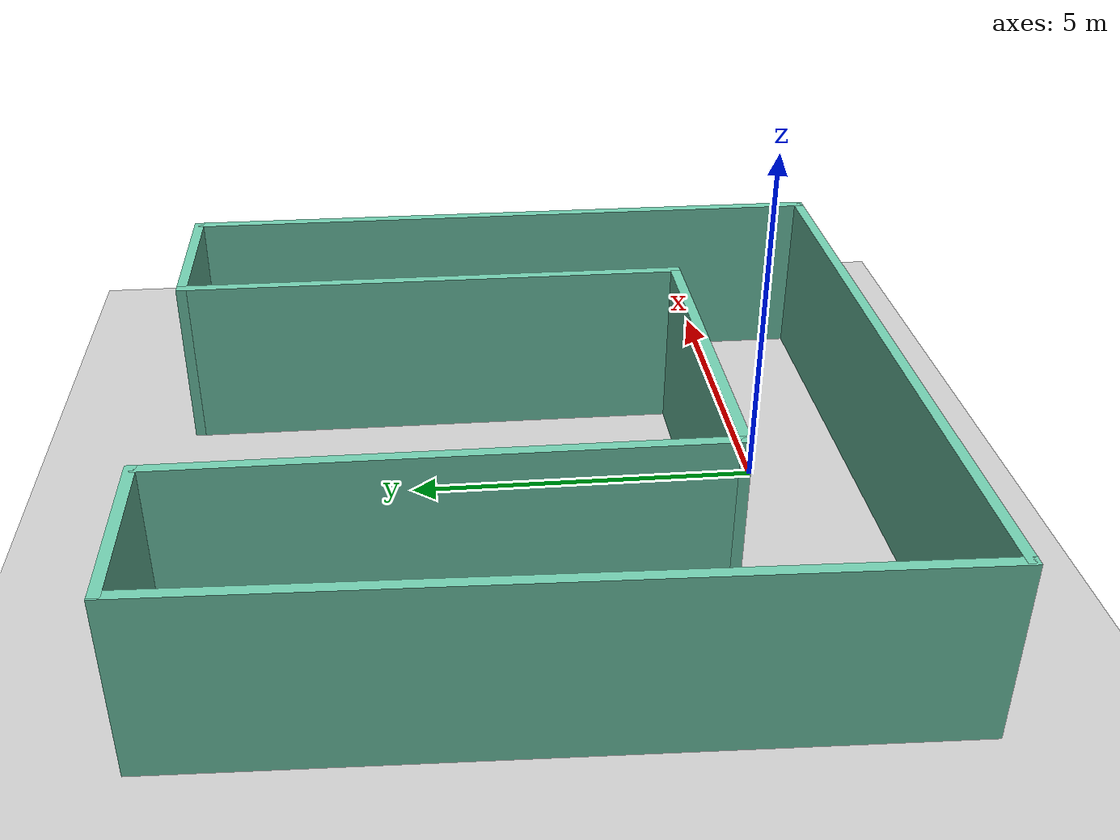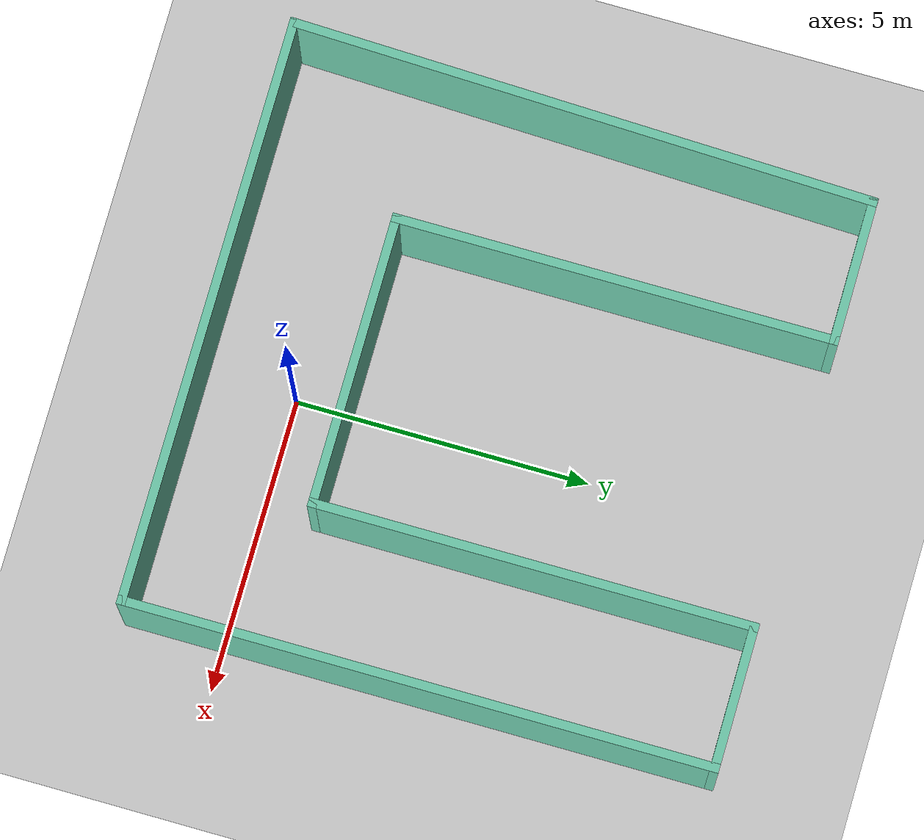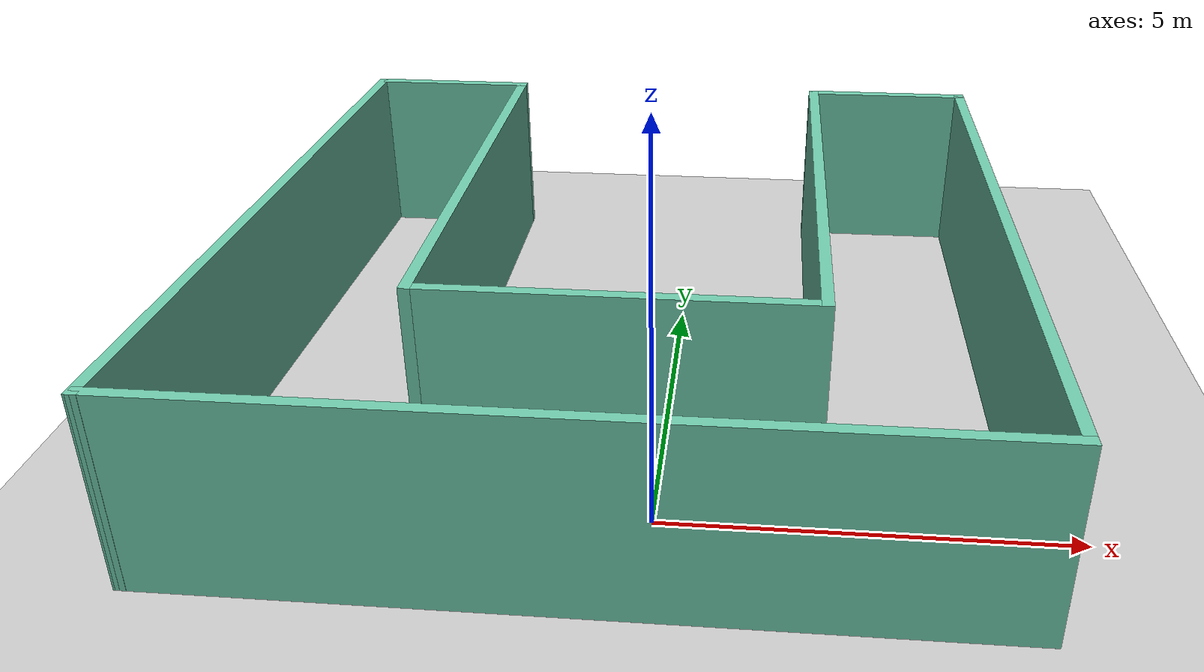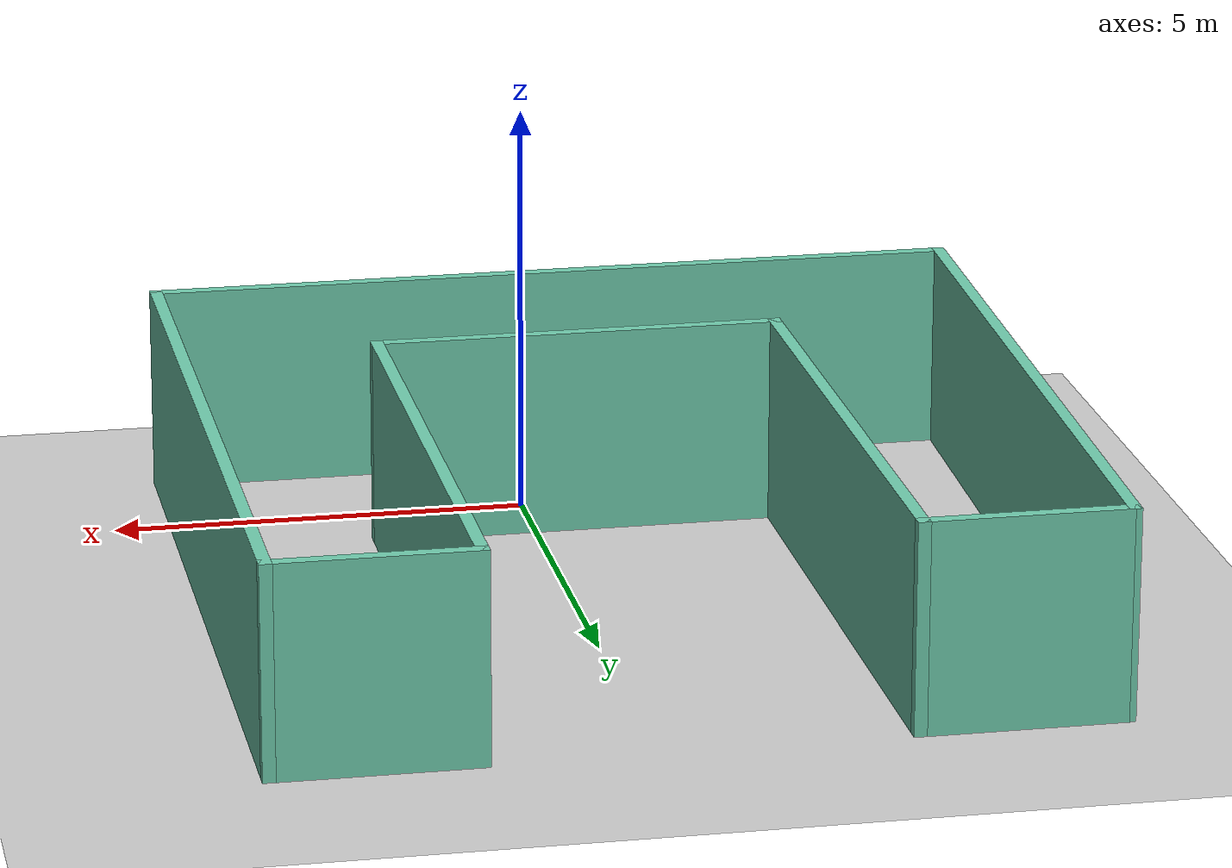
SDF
<sdf version="1.6">
 <world name="default">
  <light name="sun" type="directional">
   <pose>0 0 10 0 -0 0</pose>
   <diffuse>0.8 0.8 0.8 1</diffuse>
   <specular>0.2 0.2 0.2 1</specular>
   <attenuation>
    <range>1000</range>
    <constant>0.9</constant>
    <linear>0.01</linear>
    <quadratic>0.001</quadratic>
   </attenuation>
   <direction>-0.5 0.1 -0.9</direction>
  </light>
  <model name="ground_plane">
   <static>1</static>
   <link name="link">
    <collision name="collision">
     <geometry><plane><normal>0 0 1</normal><size>100 100</size></plane></geometry>
     <surface><friction><ode><mu>100</mu><mu2>50</mu2></ode></friction></surface>
    </collision>
    <visual name="visual">
     <cast_shadows>0</cast_shadows>
     <geometry><plane><normal>0 0 1</normal><size>100 100</size></plane></geometry>
     <material>
      <script><uri>file://media/materials/scripts/gazebo.material</uri><name>Gazebo/Grey</name></script>
     </material>
    </visual>
   </link>
  </model>
  <gravity>0 0 -9.8</gravity>
  <magnetic_field>6e-06 2.3e-05 -4.2e-05</magnetic_field>
  <atmosphere type="adiabatic"/>
  <physics name="default_physics" default="0" type="ode">
   <max_step_size>0.001</max_step_size>
   <real_time_factor>1</real_time_factor>
   <real_time_update_rate>1000</real_time_update_rate>
  </physics>
  <scene><ambient>0.4 0.4 0.4 1</ambient><background>0.7 0.7 0.7 1</background><shadows>1</shadows></scene>
  <spherical_coordinates>
   <surface_model>EARTH_WGS84</surface_model>
   <latitude_deg>0</latitude_deg>
   <longitude_deg>0</longitude_deg>
   <elevation>0</elevation>
   <heading_deg>0</heading_deg>
  </spherical_coordinates>
  <model name="editor">
   <pose>-0.683001 3.33762 0 0 -0 0</pose>
   <link name="Wall_10">
    <collision name="Wall_10_Collision">
     <geometry><box><size>7.5 0.15 2.5</size></box></geometry>
     <pose>0 0 1.25 0 -0 0</pose>
    </collision>
    <visual name="Wall_10_Visual">
     <pose>0 0 1.25 0 -0 0</pose>
     <geometry><box><size>7.5 0.15 2.5</size></box></geometry>
     <material>
      <script><uri>file://media/materials/scripts/gazebo.material</uri><name>Gazebo/Grey</name></script>
      <ambient>0.435294 0.796078 0.67451 1</ambient>
     </material>
     <meta><layer>0</layer></meta>
    </visual>
    <pose>2.58769 1.25 0 0 0 -1.5708</pose>
   </link>
   <link name="Wall_11">
    <collision name="Wall_11_Collision">
     <geometry><box><size>5 0.15 2.5</size></box></geometry>
     <pose>0 0 1.25 0 -0 0</pose>
    </collision>
    <visual name="Wall_11_Visual">
     <pose>0 0 1.25 0 -0 0</pose>
     <geometry><box><size>5 0.15 2.5</size></box></geometry>
     <material>
      <script><uri>file://media/materials/scripts/gazebo.material</uri><name>Gazebo/Grey</name></script>
      <ambient>0.435294 0.796078 0.67451 1</ambient>
     </material>
     <meta><layer>0</layer></meta>
    </visual>
    <pose>0.162689 -2.425 0 0 -0 3.14159</pose>
   </link>
   <link name="Wall_12">
    <collision name="Wall_12_Collision">
     <geometry><box><size>7.5 0.15 2.5</size></box></geometry>
     <pose>0 0 1.25 0 -0 0</pose>
    </collision>
    <visual name="Wall_12_Visual">
     <pose>0 0 1.25 0 -0 0</pose>
     <geometry><box><size>7.5 0.15 2.5</size></box></geometry>
     <material>
      <script><uri>file://media/materials/scripts/gazebo.material</uri><name>Gazebo/Grey</name></script>
      <ambient>0.435294 0.796078 0.67451 1</ambient>
     </material>
     <meta><layer>0</layer></meta>
    </visual>
    <pose>-2.26231 1.25 0 0 -0 1.5708</pose>
   </link>
   <link name="Wall_13">
    <collision name="Wall_13_Collision">
     <geometry><box><size>2.5 0.15 2.5</size></box></geometry>
     <pose>0 0 1.25 0 -0 0</pose>
    </collision>
    <visual name="Wall_13_Visual">
     <pose>0 0 1.25 0 -0 0</pose>
     <geometry><box><size>2.5 0.15 2.5</size></box></geometry>
     <material>
      <script><uri>file://media/materials/scripts/gazebo.material</uri><name>Gazebo/Grey</name></script>
      <ambient>0.435294 0.796078 0.67451 1</ambient>
     </material>
     <meta><layer>0</layer></meta>
    </visual>
    <pose>-3.43731 4.925 0 0 -0 3.14159</pose>
   </link>
   <link name="Wall_14">
    <collision name="Wall_14_Collision">
     <geometry><box><size>10.0046 0.15 2.5</size></box></geometry>
     <pose>0 0 1.25 0 -0 0</pose>
    </collision>
    <visual name="Wall_14_Visual">
     <pose>0 0 1.25 0 -0 0</pose>
     <geometry><box><size>10.0046 0.15 2.5</size></box></geometry>
     <material>
      <script><uri>file://media/materials/scripts/gazebo.material</uri><name>Gazebo/Grey</name></script>
      <ambient>0.435294 0.796078 0.67451 1</ambient>
     </material>
     <meta><layer>0</layer></meta>
    </visual>
    <pose>-4.78544 0 0 0 0 -1.60124</pose>
   </link>
   <link name="Wall_7">
    <collision name="Wall_7_Collision">
     <geometry><box><size>10 0.15 2.5</size></box></geometry>
     <pose>0 0 1.25 0 -0 0</pose>
    </collision>
    <visual name="Wall_7_Visual">
     <pose>0 0 1.25 0 -0 0</pose>
     <geometry><box><size>10 0.15 2.5</size></box></geometry>
     <material>
      <script><uri>file://media/materials/scripts/gazebo.material</uri><name>Gazebo/Grey</name></script>
      <ambient>0.435294 0.796078 0.67451 1</ambient>
     </material>
     <meta><layer>0</layer></meta>
    </visual>
    <pose>0.012689 -4.925 0 0 -0 0</pose>
   </link>
   <link name="Wall_8">
    <collision name="Wall_8_Collision">
     <geometry><box><size>10 0.15 2.5</size></box></geometry>
     <pose>0 0 1.25 0 -0 0</pose>
    </collision>
    <visual name="Wall_8_Visual">
     <pose>0 0 1.25 0 -0 0</pose>
     <geometry><box><size>10 0.15 2.5</size></box></geometry>
     <material>
      <script><uri>file://media/materials/scripts/gazebo.material</uri><name>Gazebo/Grey</name></script>
      <ambient>0.435294 0.796078 0.67451 1</ambient>
     </material>
     <meta><layer>0</layer></meta>
    </visual>
    <pose>4.93769 0 0 0 -0 1.5708</pose>
   </link>
   <link name="Wall_9">
    <collision name="Wall_9_Collision">
     <geometry><box><size>2.5 0.15 2.5</size></box></geometry>
     <pose>0 0 1.25 0 -0 0</pose>
    </collision>
    <visual name="Wall_9_Visual">
     <pose>0 0 1.25 0 -0 0</pose>
     <geometry><box><size>2.5 0.15 2.5</size></box></geometry>
     <material>
      <script><uri>file://media/materials/scripts/gazebo.material</uri><name>Gazebo/Grey</name></script>
      <ambient>0.435294 0.796078 0.67451 1</ambient>
     </material>
     <meta><layer>0</layer></meta>
    </visual>
    <pose>3.76269 4.925 0 0 -0 3.14159</pose>
   </link>
   <static>1</static>
  </model>
 </world>
</sdf>
